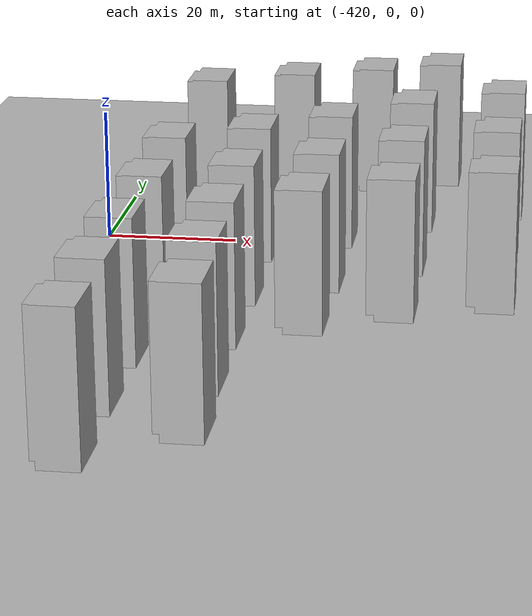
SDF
<sdf version="1.7">
 <world name="default">
  <model name="ground_plane">
   <static>1</static>
   <link name="link">
    <collision name="collision">
     <geometry><mesh><uri>model://ground_plane/scripts/plane.dae</uri><normal>0 0 1</normal></mesh></geometry>
     <surface><friction><ode><mu>100</mu><mu2>50</mu2></ode></friction></surface>
    </collision>
    <visual name="visual">
     <geometry><mesh><uri>model://ground_plane/scripts/plane.dae</uri><normal>0 0 1</normal></mesh></geometry>
     <material>
      <lighting>1</lighting>
      <script><uri>model://ground_plane/scripts/plane.jpg</uri><name>__default__</name></script>
      <shader type="pixel"/>
     </material>
    </visual>
   </link>
  </model>
  <model name="apartment1_0_clone_2">
   <static>1</static>
   <link name="link_0">
    <inertial>
     <mass>1</mass>
     <inertia>
      <ixx>0.166667</ixx>
      <ixy>0</ixy>
      <ixz>0</ixz>
      <iyy>0.166667</iyy>
      <iyz>0</iyz>
      <izz>0.166667</izz>
     </inertia>
    </inertial>
    <pose>1e-06 -0 0 0 -0 0</pose>
    <visual name="visual">
     <geometry>
      <mesh><uri>model://apartment1/scripts/apartment1.dae</uri><scale>0.14 0.14 0.175</scale></mesh>
     </geometry>
     <material>
      <lighting>1</lighting>
      <script><uri>model://apartment1/scripts/apartment1.jpg</uri><name>__default__</name></script>
      <shader type="pixel"/>
     </material>
    </visual>
    <collision name="collision">
     <geometry>
      <mesh><uri>model://apartment1/scripts/apartment1.dae</uri><scale>0.14 0.14 0.175</scale></mesh>
     </geometry>
     <surface>
      <friction>
       <ode><mu>1</mu><mu2>1</mu2><fdir1>0 0 0</fdir1><slip1>0</slip1><slip2>0</slip2></ode>
       <torsional>
        <coefficient>1</coefficient>
        <patch_radius>0</patch_radius>
        <surface_radius>0</surface_radius>
        <use_patch_radius>1</use_patch_radius>
        <ode><slip>0</slip></ode>
       </torsional>
      </friction>
      <bounce><restitution_coefficient>0</restitution_coefficient><threshold>1e+06</threshold></bounce>
      <contact>
       <collide_without_contact>0</collide_without_contact>
       <collide_without_contact_bitmask>1</collide_without_contact_bitmask>
       <collide_bitmask>1</collide_bitmask>
       <ode>
        <soft_cfm>0</soft_cfm>
        <soft_erp>0.2</soft_erp>
        <kp>1e+13</kp>
        <kd>1</kd>
        <max_vel>0.01</max_vel>
        <min_depth>0</min_depth>
       </ode>
       <bullet>
        <split_impulse>1</split_impulse>
        <split_impulse_penetration_threshold>-0.01</split_impulse_penetration_threshold>
        <soft_cfm>0</soft_cfm>
        <soft_erp>0.2</soft_erp>
        <kp>1e+13</kp>
        <kd>1</kd>
       </bullet>
      </contact>
     </surface>
    </collision>
   </link>
   <static>0</static>
   <pose>-406.714 21.8922 0 0 -0 0</pose>
  </model>
  <model name="apartment1_0_clone_3">
   <static>1</static>
   <link name="link_0">
    <inertial>
     <mass>1</mass>
     <inertia>
      <ixx>0.166667</ixx>
      <ixy>0</ixy>
      <ixz>0</ixz>
      <iyy>0.166667</iyy>
      <iyz>0</iyz>
      <izz>0.166667</izz>
     </inertia>
    </inertial>
    <pose>1e-06 -0 0 0 -0 0</pose>
    <visual name="visual">
     <geometry>
      <mesh><uri>model://apartment1/scripts/apartment1.dae</uri><scale>0.14 0.14 0.175</scale></mesh>
     </geometry>
     <material>
      <lighting>1</lighting>
      <script><uri>model://apartment1/scripts/apartment1.jpg</uri><name>__default__</name></script>
      <shader type="pixel"/>
     </material>
    </visual>
    <collision name="collision">
     <geometry>
      <mesh><uri>model://apartment1/scripts/apartment1.dae</uri><scale>0.14 0.14 0.175</scale></mesh>
     </geometry>
     <surface>
      <friction>
       <ode><mu>1</mu><mu2>1</mu2><fdir1>0 0 0</fdir1><slip1>0</slip1><slip2>0</slip2></ode>
       <torsional>
        <coefficient>1</coefficient>
        <patch_radius>0</patch_radius>
        <surface_radius>0</surface_radius>
        <use_patch_radius>1</use_patch_radius>
        <ode><slip>0</slip></ode>
       </torsional>
      </friction>
      <bounce><restitution_coefficient>0</restitution_coefficient><threshold>1e+06</threshold></bounce>
      <contact>
       <collide_without_contact>0</collide_without_contact>
       <collide_without_contact_bitmask>1</collide_without_contact_bitmask>
       <collide_bitmask>1</collide_bitmask>
       <ode>
        <soft_cfm>0</soft_cfm>
        <soft_erp>0.2</soft_erp>
        <kp>1e+13</kp>
        <kd>1</kd>
        <max_vel>0.01</max_vel>
        <min_depth>0</min_depth>
       </ode>
       <bullet>
        <split_impulse>1</split_impulse>
        <split_impulse_penetration_threshold>-0.01</split_impulse_penetration_threshold>
        <soft_cfm>0</soft_cfm>
        <soft_erp>0.2</soft_erp>
        <kp>1e+13</kp>
        <kd>1</kd>
       </bullet>
      </contact>
     </surface>
    </collision>
   </link>
   <static>0</static>
   <pose>-407.424 -11.464 0 0 -0 0</pose>
  </model>
  <model name="apartment1_0_clone_4">
   <static>1</static>
   <link name="link_0">
    <inertial>
     <mass>1</mass>
     <inertia>
      <ixx>0.166667</ixx>
      <ixy>0</ixy>
      <ixz>0</ixz>
      <iyy>0.166667</iyy>
      <iyz>0</iyz>
      <izz>0.166667</izz>
     </inertia>
    </inertial>
    <pose>1e-06 -0 0 0 -0 0</pose>
    <visual name="visual">
     <geometry>
      <mesh><uri>model://apartment1/scripts/apartment1.dae</uri><scale>0.14 0.14 0.175</scale></mesh>
     </geometry>
     <material>
      <lighting>1</lighting>
      <script><uri>model://apartment1/scripts/apartment1.jpg</uri><name>__default__</name></script>
      <shader type="pixel"/>
     </material>
    </visual>
    <collision name="collision">
     <geometry>
      <mesh><uri>model://apartment1/scripts/apartment1.dae</uri><scale>0.14 0.14 0.175</scale></mesh>
     </geometry>
     <surface>
      <friction>
       <ode><mu>1</mu><mu2>1</mu2><fdir1>0 0 0</fdir1><slip1>0</slip1><slip2>0</slip2></ode>
       <torsional>
        <coefficient>1</coefficient>
        <patch_radius>0</patch_radius>
        <surface_radius>0</surface_radius>
        <use_patch_radius>1</use_patch_radius>
        <ode><slip>0</slip></ode>
       </torsional>
      </friction>
      <bounce><restitution_coefficient>0</restitution_coefficient><threshold>1e+06</threshold></bounce>
      <contact>
       <collide_without_contact>0</collide_without_contact>
       <collide_without_contact_bitmask>1</collide_without_contact_bitmask>
       <collide_bitmask>1</collide_bitmask>
       <ode>
        <soft_cfm>0</soft_cfm>
        <soft_erp>0.2</soft_erp>
        <kp>1e+13</kp>
        <kd>1</kd>
        <max_vel>0.01</max_vel>
        <min_depth>0</min_depth>
       </ode>
       <bullet>
        <split_impulse>1</split_impulse>
        <split_impulse_penetration_threshold>-0.01</split_impulse_penetration_threshold>
        <soft_cfm>0</soft_cfm>
        <soft_erp>0.2</soft_erp>
        <kp>1e+13</kp>
        <kd>1</kd>
       </bullet>
      </contact>
     </surface>
    </collision>
   </link>
   <static>0</static>
   <pose>-395.709 -5.1567 0 0 -0 0</pose>
  </model>
  <model name="apartment1_0_clone_5">
   <static>1</static>
   <link name="link_0">
    <inertial>
     <mass>1</mass>
     <inertia>
      <ixx>0.166667</ixx>
      <ixy>0</ixy>
      <ixz>0</ixz>
      <iyy>0.166667</iyy>
      <iyz>0</iyz>
      <izz>0.166667</izz>
     </inertia>
    </inertial>
    <pose>1e-06 -0 0 0 -0 0</pose>
    <visual name="visual">
     <geometry>
      <mesh><uri>model://apartment1/scripts/apartment1.dae</uri><scale>0.14 0.14 0.175</scale></mesh>
     </geometry>
     <material>
      <lighting>1</lighting>
      <script><uri>model://apartment1/scripts/apartment1.jpg</uri><name>__default__</name></script>
      <shader type="pixel"/>
     </material>
    </visual>
    <collision name="collision">
     <geometry>
      <mesh><uri>model://apartment1/scripts/apartment1.dae</uri><scale>0.14 0.14 0.175</scale></mesh>
     </geometry>
     <surface>
      <friction>
       <ode><mu>1</mu><mu2>1</mu2><fdir1>0 0 0</fdir1><slip1>0</slip1><slip2>0</slip2></ode>
       <torsional>
        <coefficient>1</coefficient>
        <patch_radius>0</patch_radius>
        <surface_radius>0</surface_radius>
        <use_patch_radius>1</use_patch_radius>
        <ode><slip>0</slip></ode>
       </torsional>
      </friction>
      <bounce><restitution_coefficient>0</restitution_coefficient><threshold>1e+06</threshold></bounce>
      <contact>
       <collide_without_contact>0</collide_without_contact>
       <collide_without_contact_bitmask>1</collide_without_contact_bitmask>
       <collide_bitmask>1</collide_bitmask>
       <ode>
        <soft_cfm>0</soft_cfm>
        <soft_erp>0.2</soft_erp>
        <kp>1e+13</kp>
        <kd>1</kd>
        <max_vel>0.01</max_vel>
        <min_depth>0</min_depth>
       </ode>
       <bullet>
        <split_impulse>1</split_impulse>
        <split_impulse_penetration_threshold>-0.01</split_impulse_penetration_threshold>
        <soft_cfm>0</soft_cfm>
        <soft_erp>0.2</soft_erp>
        <kp>1e+13</kp>
        <kd>1</kd>
       </bullet>
      </contact>
     </surface>
    </collision>
   </link>
   <static>0</static>
   <pose>-384.289 2.77257 0 0 -0 0</pose>
  </model>
  <model name="apartment1_0_clone_6">
   <static>1</static>
   <link name="link_0">
    <inertial>
     <mass>1</mass>
     <inertia>
      <ixx>0.166667</ixx>
      <ixy>0</ixy>
      <ixz>0</ixz>
      <iyy>0.166667</iyy>
      <iyz>0</iyz>
      <izz>0.166667</izz>
     </inertia>
    </inertial>
    <pose>1e-06 -0 0 0 -0 0</pose>
    <visual name="visual">
     <geometry>
      <mesh><uri>model://apartment1/scripts/apartment1.dae</uri><scale>0.14 0.14 0.175</scale></mesh>
     </geometry>
     <material>
      <lighting>1</lighting>
      <script><uri>model://apartment1/scripts/apartment1.jpg</uri><name>__default__</name></script>
      <shader type="pixel"/>
     </material>
    </visual>
    <collision name="collision">
     <geometry>
      <mesh><uri>model://apartment1/scripts/apartment1.dae</uri><scale>0.14 0.14 0.175</scale></mesh>
     </geometry>
     <surface>
      <friction>
       <ode><mu>1</mu><mu2>1</mu2><fdir1>0 0 0</fdir1><slip1>0</slip1><slip2>0</slip2></ode>
       <torsional>
        <coefficient>1</coefficient>
        <patch_radius>0</patch_radius>
        <surface_radius>0</surface_radius>
        <use_patch_radius>1</use_patch_radius>
        <ode><slip>0</slip></ode>
       </torsional>
      </friction>
      <bounce><restitution_coefficient>0</restitution_coefficient><threshold>1e+06</threshold></bounce>
      <contact>
       <collide_without_contact>0</collide_without_contact>
       <collide_without_contact_bitmask>1</collide_without_contact_bitmask>
       <collide_bitmask>1</collide_bitmask>
       <ode>
        <soft_cfm>0</soft_cfm>
        <soft_erp>0.2</soft_erp>
        <kp>1e+13</kp>
        <kd>1</kd>
        <max_vel>0.01</max_vel>
        <min_depth>0</min_depth>
       </ode>
       <bullet>
        <split_impulse>1</split_impulse>
        <split_impulse_penetration_threshold>-0.01</split_impulse_penetration_threshold>
        <soft_cfm>0</soft_cfm>
        <soft_erp>0.2</soft_erp>
        <kp>1e+13</kp>
        <kd>1</kd>
       </bullet>
      </contact>
     </surface>
    </collision>
   </link>
   <static>0</static>
   <pose>-372.548 12.0518 0 0 -0 0</pose>
  </model>
  <model name="apartment1_0_clone_7">
   <static>1</static>
   <link name="link_0">
    <inertial>
     <mass>1</mass>
     <inertia>
      <ixx>0.166667</ixx>
      <ixy>0</ixy>
      <ixz>0</ixz>
      <iyy>0.166667</iyy>
      <iyz>0</iyz>
      <izz>0.166667</izz>
     </inertia>
    </inertial>
    <pose>1e-06 -0 0 0 -0 0</pose>
    <visual name="visual">
     <geometry>
      <mesh><uri>model://apartment1/scripts/apartment1.dae</uri><scale>0.14 0.14 0.175</scale></mesh>
     </geometry>
     <material>
      <lighting>1</lighting>
      <script><uri>model://apartment1/scripts/apartment1.jpg</uri><name>__default__</name></script>
      <shader type="pixel"/>
     </material>
    </visual>
    <collision name="collision">
     <geometry>
      <mesh><uri>model://apartment1/scripts/apartment1.dae</uri><scale>0.14 0.14 0.175</scale></mesh>
     </geometry>
     <surface>
      <friction>
       <ode><mu>1</mu><mu2>1</mu2><fdir1>0 0 0</fdir1><slip1>0</slip1><slip2>0</slip2></ode>
       <torsional>
        <coefficient>1</coefficient>
        <patch_radius>0</patch_radius>
        <surface_radius>0</surface_radius>
        <use_patch_radius>1</use_patch_radius>
        <ode><slip>0</slip></ode>
       </torsional>
      </friction>
      <bounce><restitution_coefficient>0</restitution_coefficient><threshold>1e+06</threshold></bounce>
      <contact>
       <collide_without_contact>0</collide_without_contact>
       <collide_without_contact_bitmask>1</collide_without_contact_bitmask>
       <collide_bitmask>1</collide_bitmask>
       <ode>
        <soft_cfm>0</soft_cfm>
        <soft_erp>0.2</soft_erp>
        <kp>1e+13</kp>
        <kd>1</kd>
        <max_vel>0.01</max_vel>
        <min_depth>0</min_depth>
       </ode>
       <bullet>
        <split_impulse>1</split_impulse>
        <split_impulse_penetration_threshold>-0.01</split_impulse_penetration_threshold>
        <soft_cfm>0</soft_cfm>
        <soft_erp>0.2</soft_erp>
        <kp>1e+13</kp>
        <kd>1</kd>
       </bullet>
      </contact>
     </surface>
    </collision>
   </link>
   <static>0</static>
   <pose>-358.658 19.9237 0 0 -0 0</pose>
  </model>
  <model name="apartment1_0_clone_8">
   <static>1</static>
   <link name="link_0">
    <inertial>
     <mass>1</mass>
     <inertia>
      <ixx>0.166667</ixx>
      <ixy>0</ixy>
      <ixz>0</ixz>
      <iyy>0.166667</iyy>
      <iyz>0</iyz>
      <izz>0.166667</izz>
     </inertia>
    </inertial>
    <pose>1e-06 -0 0 0 -0 0</pose>
    <visual name="visual">
     <geometry>
      <mesh><uri>model://apartment1/scripts/apartment1.dae</uri><scale>0.14 0.14 0.175</scale></mesh>
     </geometry>
     <material>
      <lighting>1</lighting>
      <script><uri>model://apartment1/scripts/apartment1.jpg</uri><name>__default__</name></script>
      <shader type="pixel"/>
     </material>
    </visual>
    <collision name="collision">
     <geometry>
      <mesh><uri>model://apartment1/scripts/apartment1.dae</uri><scale>0.14 0.14 0.175</scale></mesh>
     </geometry>
     <surface>
      <friction>
       <ode><mu>1</mu><mu2>1</mu2><fdir1>0 0 0</fdir1><slip1>0</slip1><slip2>0</slip2></ode>
       <torsional>
        <coefficient>1</coefficient>
        <patch_radius>0</patch_radius>
        <surface_radius>0</surface_radius>
        <use_patch_radius>1</use_patch_radius>
        <ode><slip>0</slip></ode>
       </torsional>
      </friction>
      <bounce><restitution_coefficient>0</restitution_coefficient><threshold>1e+06</threshold></bounce>
      <contact>
       <collide_without_contact>0</collide_without_contact>
       <collide_without_contact_bitmask>1</collide_without_contact_bitmask>
       <collide_bitmask>1</collide_bitmask>
       <ode>
        <soft_cfm>0</soft_cfm>
        <soft_erp>0.2</soft_erp>
        <kp>1e+13</kp>
        <kd>1</kd>
        <max_vel>0.01</max_vel>
        <min_depth>0</min_depth>
       </ode>
       <bullet>
        <split_impulse>1</split_impulse>
        <split_impulse_penetration_threshold>-0.01</split_impulse_penetration_threshold>
        <soft_cfm>0</soft_cfm>
        <soft_erp>0.2</soft_erp>
        <kp>1e+13</kp>
        <kd>1</kd>
       </bullet>
      </contact>
     </surface>
    </collision>
   </link>
   <static>0</static>
   <pose>-407.23 -30.696 0 0 -0 0</pose>
  </model>
  <model name="apartment1_0_clone_9">
   <static>1</static>
   <link name="link_0">
    <inertial>
     <mass>1</mass>
     <inertia>
      <ixx>0.166667</ixx>
      <ixy>0</ixy>
      <ixz>0</ixz>
      <iyy>0.166667</iyy>
      <iyz>0</iyz>
      <izz>0.166667</izz>
     </inertia>
    </inertial>
    <pose>1e-06 -0 0 0 -0 0</pose>
    <visual name="visual">
     <geometry>
      <mesh><uri>model://apartment1/scripts/apartment1.dae</uri><scale>0.14 0.14 0.175</scale></mesh>
     </geometry>
     <material>
      <lighting>1</lighting>
      <script><uri>model://apartment1/scripts/apartment1.jpg</uri><name>__default__</name></script>
      <shader type="pixel"/>
     </material>
    </visual>
    <collision name="collision">
     <geometry>
      <mesh><uri>model://apartment1/scripts/apartment1.dae</uri><scale>0.14 0.14 0.175</scale></mesh>
     </geometry>
     <surface>
      <friction>
       <ode><mu>1</mu><mu2>1</mu2><fdir1>0 0 0</fdir1><slip1>0</slip1><slip2>0</slip2></ode>
       <torsional>
        <coefficient>1</coefficient>
        <patch_radius>0</patch_radius>
        <surface_radius>0</surface_radius>
        <use_patch_radius>1</use_patch_radius>
        <ode><slip>0</slip></ode>
       </torsional>
      </friction>
      <bounce><restitution_coefficient>0</restitution_coefficient><threshold>1e+06</threshold></bounce>
      <contact>
       <collide_without_contact>0</collide_without_contact>
       <collide_without_contact_bitmask>1</collide_without_contact_bitmask>
       <collide_bitmask>1</collide_bitmask>
       <ode>
        <soft_cfm>0</soft_cfm>
        <soft_erp>0.2</soft_erp>
        <kp>1e+13</kp>
        <kd>1</kd>
        <max_vel>0.01</max_vel>
        <min_depth>0</min_depth>
       </ode>
       <bullet>
        <split_impulse>1</split_impulse>
        <split_impulse_penetration_threshold>-0.01</split_impulse_penetration_threshold>
        <soft_cfm>0</soft_cfm>
        <soft_erp>0.2</soft_erp>
        <kp>1e+13</kp>
        <kd>1</kd>
       </bullet>
      </contact>
     </surface>
    </collision>
   </link>
   <static>0</static>
   <pose>-407.538 -49.0824 0 0 -0 0</pose>
  </model>
  <model name="apartment1_0_clone_10">
   <static>1</static>
   <link name="link_0">
    <inertial>
     <mass>1</mass>
     <inertia>
      <ixx>0.166667</ixx>
      <ixy>0</ixy>
      <ixz>0</ixz>
      <iyy>0.166667</iyy>
      <iyz>0</iyz>
      <izz>0.166667</izz>
     </inertia>
    </inertial>
    <pose>1e-06 -0 0 0 -0 0</pose>
    <visual name="visual">
     <geometry>
      <mesh><uri>model://apartment1/scripts/apartment1.dae</uri><scale>0.14 0.14 0.175</scale></mesh>
     </geometry>
     <material>
      <lighting>1</lighting>
      <script><uri>model://apartment1/scripts/apartment1.jpg</uri><name>__default__</name></script>
      <shader type="pixel"/>
     </material>
    </visual>
    <collision name="collision">
     <geometry>
      <mesh><uri>model://apartment1/scripts/apartment1.dae</uri><scale>0.14 0.14 0.175</scale></mesh>
     </geometry>
     <surface>
      <friction>
       <ode><mu>1</mu><mu2>1</mu2><fdir1>0 0 0</fdir1><slip1>0</slip1><slip2>0</slip2></ode>
       <torsional>
        <coefficient>1</coefficient>
        <patch_radius>0</patch_radius>
        <surface_radius>0</surface_radius>
        <use_patch_radius>1</use_patch_radius>
        <ode><slip>0</slip></ode>
       </torsional>
      </friction>
      <bounce><restitution_coefficient>0</restitution_coefficient><threshold>1e+06</threshold></bounce>
      <contact>
       <collide_without_contact>0</collide_without_contact>
       <collide_without_contact_bitmask>1</collide_without_contact_bitmask>
       <collide_bitmask>1</collide_bitmask>
       <ode>
        <soft_cfm>0</soft_cfm>
        <soft_erp>0.2</soft_erp>
        <kp>1e+13</kp>
        <kd>1</kd>
        <max_vel>0.01</max_vel>
        <min_depth>0</min_depth>
       </ode>
       <bullet>
        <split_impulse>1</split_impulse>
        <split_impulse_penetration_threshold>-0.01</split_impulse_penetration_threshold>
        <soft_cfm>0</soft_cfm>
        <soft_erp>0.2</soft_erp>
        <kp>1e+13</kp>
        <kd>1</kd>
       </bullet>
      </contact>
     </surface>
    </collision>
   </link>
   <static>0</static>
   <pose>-407.56 -65.1741 0 0 -0 0</pose>
  </model>
  <model name="apartment1_0_clone_11">
   <static>1</static>
   <link name="link_0">
    <inertial>
     <mass>1</mass>
     <inertia>
      <ixx>0.166667</ixx>
      <ixy>0</ixy>
      <ixz>0</ixz>
      <iyy>0.166667</iyy>
      <iyz>0</iyz>
      <izz>0.166667</izz>
     </inertia>
    </inertial>
    <pose>1e-06 -0 0 0 -0 0</pose>
    <visual name="visual">
     <geometry>
      <mesh><uri>model://apartment1/scripts/apartment1.dae</uri><scale>0.14 0.14 0.175</scale></mesh>
     </geometry>
     <material>
      <lighting>1</lighting>
      <script><uri>model://apartment1/scripts/apartment1.jpg</uri><name>__default__</name></script>
      <shader type="pixel"/>
     </material>
    </visual>
    <collision name="collision">
     <geometry>
      <mesh><uri>model://apartment1/scripts/apartment1.dae</uri><scale>0.14 0.14 0.175</scale></mesh>
     </geometry>
     <surface>
      <friction>
       <ode><mu>1</mu><mu2>1</mu2><fdir1>0 0 0</fdir1><slip1>0</slip1><slip2>0</slip2></ode>
       <torsional>
        <coefficient>1</coefficient>
        <patch_radius>0</patch_radius>
        <surface_radius>0</surface_radius>
        <use_patch_radius>1</use_patch_radius>
        <ode><slip>0</slip></ode>
       </torsional>
      </friction>
      <bounce><restitution_coefficient>0</restitution_coefficient><threshold>1e+06</threshold></bounce>
      <contact>
       <collide_without_contact>0</collide_without_contact>
       <collide_without_contact_bitmask>1</collide_without_contact_bitmask>
       <collide_bitmask>1</collide_bitmask>
       <ode>
        <soft_cfm>0</soft_cfm>
        <soft_erp>0.2</soft_erp>
        <kp>1e+13</kp>
        <kd>1</kd>
        <max_vel>0.01</max_vel>
        <min_depth>0</min_depth>
       </ode>
       <bullet>
        <split_impulse>1</split_impulse>
        <split_impulse_penetration_threshold>-0.01</split_impulse_penetration_threshold>
        <soft_cfm>0</soft_cfm>
        <soft_erp>0.2</soft_erp>
        <kp>1e+13</kp>
        <kd>1</kd>
       </bullet>
      </contact>
     </surface>
    </collision>
   </link>
   <static>0</static>
   <pose>-407.346 -81.6289 0 0 -0 0</pose>
  </model>
  <model name="apartment1_0_clone_4_clone">
   <static>1</static>
   <link name="link_0">
    <inertial>
     <mass>1</mass>
     <inertia>
      <ixx>0.166667</ixx>
      <ixy>0</ixy>
      <ixz>0</ixz>
      <iyy>0.166667</iyy>
      <iyz>0</iyz>
      <izz>0.166667</izz>
     </inertia>
    </inertial>
    <pose>1e-06 -0 0 0 -0 0</pose>
    <visual name="visual">
     <geometry>
      <mesh><uri>model://apartment1/scripts/apartment1.dae</uri><scale>0.14 0.14 0.175</scale></mesh>
     </geometry>
     <material>
      <lighting>1</lighting>
      <script><uri>model://apartment1/scripts/apartment1.jpg</uri><name>__default__</name></script>
      <shader type="pixel"/>
     </material>
    </visual>
    <collision name="collision">
     <geometry>
      <mesh><uri>model://apartment1/scripts/apartment1.dae</uri><scale>0.14 0.14 0.175</scale></mesh>
     </geometry>
     <surface>
      <friction>
       <ode><mu>1</mu><mu2>1</mu2><fdir1>0 0 0</fdir1><slip1>0</slip1><slip2>0</slip2></ode>
       <torsional>
        <coefficient>1</coefficient>
        <patch_radius>0</patch_radius>
        <surface_radius>0</surface_radius>
        <use_patch_radius>1</use_patch_radius>
        <ode><slip>0</slip></ode>
       </torsional>
      </friction>
      <bounce><restitution_coefficient>0</restitution_coefficient><threshold>1e+06</threshold></bounce>
      <contact>
       <collide_without_contact>0</collide_without_contact>
       <collide_without_contact_bitmask>1</collide_without_contact_bitmask>
       <collide_bitmask>1</collide_bitmask>
       <ode>
        <soft_cfm>0</soft_cfm>
        <soft_erp>0.2</soft_erp>
        <kp>1e+13</kp>
        <kd>1</kd>
        <max_vel>0.01</max_vel>
        <min_depth>0</min_depth>
       </ode>
       <bullet>
        <split_impulse>1</split_impulse>
        <split_impulse_penetration_threshold>-0.01</split_impulse_penetration_threshold>
        <soft_cfm>0</soft_cfm>
        <soft_erp>0.2</soft_erp>
        <kp>1e+13</kp>
        <kd>1</kd>
       </bullet>
      </contact>
     </surface>
    </collision>
   </link>
   <static>0</static>
   <pose>-395.309 -24.1462 0 0 -0 0</pose>
  </model>
  <model name="apartment1_0_clone_4_clone_0">
   <static>1</static>
   <link name="link_0">
    <inertial>
     <mass>1</mass>
     <inertia>
      <ixx>0.166667</ixx>
      <ixy>0</ixy>
      <ixz>0</ixz>
      <iyy>0.166667</iyy>
      <iyz>0</iyz>
      <izz>0.166667</izz>
     </inertia>
    </inertial>
    <pose>1e-06 -0 0 0 -0 0</pose>
    <visual name="visual">
     <geometry>
      <mesh><uri>model://apartment1/scripts/apartment1.dae</uri><scale>0.14 0.14 0.175</scale></mesh>
     </geometry>
     <material>
      <lighting>1</lighting>
      <script><uri>model://apartment1/scripts/apartment1.jpg</uri><name>__default__</name></script>
      <shader type="pixel"/>
     </material>
    </visual>
    <collision name="collision">
     <geometry>
      <mesh><uri>model://apartment1/scripts/apartment1.dae</uri><scale>0.14 0.14 0.175</scale></mesh>
     </geometry>
     <surface>
      <friction>
       <ode><mu>1</mu><mu2>1</mu2><fdir1>0 0 0</fdir1><slip1>0</slip1><slip2>0</slip2></ode>
       <torsional>
        <coefficient>1</coefficient>
        <patch_radius>0</patch_radius>
        <surface_radius>0</surface_radius>
        <use_patch_radius>1</use_patch_radius>
        <ode><slip>0</slip></ode>
       </torsional>
      </friction>
      <bounce><restitution_coefficient>0</restitution_coefficient><threshold>1e+06</threshold></bounce>
      <contact>
       <collide_without_contact>0</collide_without_contact>
       <collide_without_contact_bitmask>1</collide_without_contact_bitmask>
       <collide_bitmask>1</collide_bitmask>
       <ode>
        <soft_cfm>0</soft_cfm>
        <soft_erp>0.2</soft_erp>
        <kp>1e+13</kp>
        <kd>1</kd>
        <max_vel>0.01</max_vel>
        <min_depth>0</min_depth>
       </ode>
       <bullet>
        <split_impulse>1</split_impulse>
        <split_impulse_penetration_threshold>-0.01</split_impulse_penetration_threshold>
        <soft_cfm>0</soft_cfm>
        <soft_erp>0.2</soft_erp>
        <kp>1e+13</kp>
        <kd>1</kd>
       </bullet>
      </contact>
     </surface>
    </collision>
   </link>
   <static>0</static>
   <pose>-384.006 -17.2145 0 0 -0 0</pose>
  </model>
  <model name="apartment1_0_clone_4_clone_1">
   <static>1</static>
   <link name="link_0">
    <inertial>
     <mass>1</mass>
     <inertia>
      <ixx>0.166667</ixx>
      <ixy>0</ixy>
      <ixz>0</ixz>
      <iyy>0.166667</iyy>
      <iyz>0</iyz>
      <izz>0.166667</izz>
     </inertia>
    </inertial>
    <pose>1e-06 -0 0 0 -0 0</pose>
    <visual name="visual">
     <geometry>
      <mesh><uri>model://apartment1/scripts/apartment1.dae</uri><scale>0.14 0.14 0.175</scale></mesh>
     </geometry>
     <material>
      <lighting>1</lighting>
      <script><uri>model://apartment1/scripts/apartment1.jpg</uri><name>__default__</name></script>
      <shader type="pixel"/>
     </material>
    </visual>
    <collision name="collision">
     <geometry>
      <mesh><uri>model://apartment1/scripts/apartment1.dae</uri><scale>0.14 0.14 0.175</scale></mesh>
     </geometry>
     <surface>
      <friction>
       <ode><mu>1</mu><mu2>1</mu2><fdir1>0 0 0</fdir1><slip1>0</slip1><slip2>0</slip2></ode>
       <torsional>
        <coefficient>1</coefficient>
        <patch_radius>0</patch_radius>
        <surface_radius>0</surface_radius>
        <use_patch_radius>1</use_patch_radius>
        <ode><slip>0</slip></ode>
       </torsional>
      </friction>
      <bounce><restitution_coefficient>0</restitution_coefficient><threshold>1e+06</threshold></bounce>
      <contact>
       <collide_without_contact>0</collide_without_contact>
       <collide_without_contact_bitmask>1</collide_without_contact_bitmask>
       <collide_bitmask>1</collide_bitmask>
       <ode>
        <soft_cfm>0</soft_cfm>
        <soft_erp>0.2</soft_erp>
        <kp>1e+13</kp>
        <kd>1</kd>
        <max_vel>0.01</max_vel>
        <min_depth>0</min_depth>
       </ode>
       <bullet>
        <split_impulse>1</split_impulse>
        <split_impulse_penetration_threshold>-0.01</split_impulse_penetration_threshold>
        <soft_cfm>0</soft_cfm>
        <soft_erp>0.2</soft_erp>
        <kp>1e+13</kp>
        <kd>1</kd>
       </bullet>
      </contact>
     </surface>
    </collision>
   </link>
   <static>0</static>
   <pose>-372.442 -8.73774 0 0 -0 0</pose>
  </model>
  <model name="apartment1_0_clone_4_clone_2">
   <static>1</static>
   <link name="link_0">
    <inertial>
     <mass>1</mass>
     <inertia>
      <ixx>0.166667</ixx>
      <ixy>0</ixy>
      <ixz>0</ixz>
      <iyy>0.166667</iyy>
      <iyz>0</iyz>
      <izz>0.166667</izz>
     </inertia>
    </inertial>
    <pose>1e-06 -0 0 0 -0 0</pose>
    <visual name="visual">
     <geometry>
      <mesh><uri>model://apartment1/scripts/apartment1.dae</uri><scale>0.14 0.14 0.175</scale></mesh>
     </geometry>
     <material>
      <lighting>1</lighting>
      <script><uri>model://apartment1/scripts/apartment1.jpg</uri><name>__default__</name></script>
      <shader type="pixel"/>
     </material>
    </visual>
    <collision name="collision">
     <geometry>
      <mesh><uri>model://apartment1/scripts/apartment1.dae</uri><scale>0.14 0.14 0.175</scale></mesh>
     </geometry>
     <surface>
      <friction>
       <ode><mu>1</mu><mu2>1</mu2><fdir1>0 0 0</fdir1><slip1>0</slip1><slip2>0</slip2></ode>
       <torsional>
        <coefficient>1</coefficient>
        <patch_radius>0</patch_radius>
        <surface_radius>0</surface_radius>
        <use_patch_radius>1</use_patch_radius>
        <ode><slip>0</slip></ode>
       </torsional>
      </friction>
      <bounce><restitution_coefficient>0</restitution_coefficient><threshold>1e+06</threshold></bounce>
      <contact>
       <collide_without_contact>0</collide_without_contact>
       <collide_without_contact_bitmask>1</collide_without_contact_bitmask>
       <collide_bitmask>1</collide_bitmask>
       <ode>
        <soft_cfm>0</soft_cfm>
        <soft_erp>0.2</soft_erp>
        <kp>1e+13</kp>
        <kd>1</kd>
        <max_vel>0.01</max_vel>
        <min_depth>0</min_depth>
       </ode>
       <bullet>
        <split_impulse>1</split_impulse>
        <split_impulse_penetration_threshold>-0.01</split_impulse_penetration_threshold>
        <soft_cfm>0</soft_cfm>
        <soft_erp>0.2</soft_erp>
        <kp>1e+13</kp>
        <kd>1</kd>
       </bullet>
      </contact>
     </surface>
    </collision>
   </link>
   <static>0</static>
   <pose>-358.708 -2.52428 0 0 -0 0</pose>
  </model>
  <model name="apartment1_0_clone_4_clone_3">
   <static>1</static>
   <link name="link_0">
    <inertial>
     <mass>1</mass>
     <inertia>
      <ixx>0.166667</ixx>
      <ixy>0</ixy>
      <ixz>0</ixz>
      <iyy>0.166667</iyy>
      <iyz>0</iyz>
      <izz>0.166667</izz>
     </inertia>
    </inertial>
    <pose>1e-06 -0 0 0 -0 0</pose>
    <visual name="visual">
     <geometry>
      <mesh><uri>model://apartment1/scripts/apartment1.dae</uri><scale>0.14 0.14 0.175</scale></mesh>
     </geometry>
     <material>
      <lighting>1</lighting>
      <script><uri>model://apartment1/scripts/apartment1.jpg</uri><name>__default__</name></script>
      <shader type="pixel"/>
     </material>
    </visual>
    <collision name="collision">
     <geometry>
      <mesh><uri>model://apartment1/scripts/apartment1.dae</uri><scale>0.14 0.14 0.175</scale></mesh>
     </geometry>
     <surface>
      <friction>
       <ode><mu>1</mu><mu2>1</mu2><fdir1>0 0 0</fdir1><slip1>0</slip1><slip2>0</slip2></ode>
       <torsional>
        <coefficient>1</coefficient>
        <patch_radius>0</patch_radius>
        <surface_radius>0</surface_radius>
        <use_patch_radius>1</use_patch_radius>
        <ode><slip>0</slip></ode>
       </torsional>
      </friction>
      <bounce><restitution_coefficient>0</restitution_coefficient><threshold>1e+06</threshold></bounce>
      <contact>
       <collide_without_contact>0</collide_without_contact>
       <collide_without_contact_bitmask>1</collide_without_contact_bitmask>
       <collide_bitmask>1</collide_bitmask>
       <ode>
        <soft_cfm>0</soft_cfm>
        <soft_erp>0.2</soft_erp>
        <kp>1e+13</kp>
        <kd>1</kd>
        <max_vel>0.01</max_vel>
        <min_depth>0</min_depth>
       </ode>
       <bullet>
        <split_impulse>1</split_impulse>
        <split_impulse_penetration_threshold>-0.01</split_impulse_penetration_threshold>
        <soft_cfm>0</soft_cfm>
        <soft_erp>0.2</soft_erp>
        <kp>1e+13</kp>
        <kd>1</kd>
       </bullet>
      </contact>
     </surface>
    </collision>
   </link>
   <static>0</static>
   <pose>-395.426 -40.9327 0 0 -0 0</pose>
  </model>
  <model name="apartment1_0_clone_4_clone_4">
   <static>1</static>
   <link name="link_0">
    <inertial>
     <mass>1</mass>
     <inertia>
      <ixx>0.166667</ixx>
      <ixy>0</ixy>
      <ixz>0</ixz>
      <iyy>0.166667</iyy>
      <iyz>0</iyz>
      <izz>0.166667</izz>
     </inertia>
    </inertial>
    <pose>1e-06 -0 0 0 -0 0</pose>
    <visual name="visual">
     <geometry>
      <mesh><uri>model://apartment1/scripts/apartment1.dae</uri><scale>0.14 0.14 0.175</scale></mesh>
     </geometry>
     <material>
      <lighting>1</lighting>
      <script><uri>model://apartment1/scripts/apartment1.jpg</uri><name>__default__</name></script>
      <shader type="pixel"/>
     </material>
    </visual>
    <collision name="collision">
     <geometry>
      <mesh><uri>model://apartment1/scripts/apartment1.dae</uri><scale>0.14 0.14 0.175</scale></mesh>
     </geometry>
     <surface>
      <friction>
       <ode><mu>1</mu><mu2>1</mu2><fdir1>0 0 0</fdir1><slip1>0</slip1><slip2>0</slip2></ode>
       <torsional>
        <coefficient>1</coefficient>
        <patch_radius>0</patch_radius>
        <surface_radius>0</surface_radius>
        <use_patch_radius>1</use_patch_radius>
        <ode><slip>0</slip></ode>
       </torsional>
      </friction>
      <bounce><restitution_coefficient>0</restitution_coefficient><threshold>1e+06</threshold></bounce>
      <contact>
       <collide_without_contact>0</collide_without_contact>
       <collide_without_contact_bitmask>1</collide_without_contact_bitmask>
       <collide_bitmask>1</collide_bitmask>
       <ode>
        <soft_cfm>0</soft_cfm>
        <soft_erp>0.2</soft_erp>
        <kp>1e+13</kp>
        <kd>1</kd>
        <max_vel>0.01</max_vel>
        <min_depth>0</min_depth>
       </ode>
       <bullet>
        <split_impulse>1</split_impulse>
        <split_impulse_penetration_threshold>-0.01</split_impulse_penetration_threshold>
        <soft_cfm>0</soft_cfm>
        <soft_erp>0.2</soft_erp>
        <kp>1e+13</kp>
        <kd>1</kd>
       </bullet>
      </contact>
     </surface>
    </collision>
   </link>
   <static>0</static>
   <pose>-384.344 -34.5261 0 0 -0 0</pose>
  </model>
  <model name="apartment1_0_clone_4_clone_5">
   <static>1</static>
   <link name="link_0">
    <inertial>
     <mass>1</mass>
     <inertia>
      <ixx>0.166667</ixx>
      <ixy>0</ixy>
      <ixz>0</ixz>
      <iyy>0.166667</iyy>
      <iyz>0</iyz>
      <izz>0.166667</izz>
     </inertia>
    </inertial>
    <pose>1e-06 -0 0 0 -0 0</pose>
    <visual name="visual">
     <geometry>
      <mesh><uri>model://apartment1/scripts/apartment1.dae</uri><scale>0.14 0.14 0.175</scale></mesh>
     </geometry>
     <material>
      <lighting>1</lighting>
      <script><uri>model://apartment1/scripts/apartment1.jpg</uri><name>__default__</name></script>
      <shader type="pixel"/>
     </material>
    </visual>
    <collision name="collision">
     <geometry>
      <mesh><uri>model://apartment1/scripts/apartment1.dae</uri><scale>0.14 0.14 0.175</scale></mesh>
     </geometry>
     <surface>
      <friction>
       <ode><mu>1</mu><mu2>1</mu2><fdir1>0 0 0</fdir1><slip1>0</slip1><slip2>0</slip2></ode>
       <torsional>
        <coefficient>1</coefficient>
        <patch_radius>0</patch_radius>
        <surface_radius>0</surface_radius>
        <use_patch_radius>1</use_patch_radius>
        <ode><slip>0</slip></ode>
       </torsional>
      </friction>
      <bounce><restitution_coefficient>0</restitution_coefficient><threshold>1e+06</threshold></bounce>
      <contact>
       <collide_without_contact>0</collide_without_contact>
       <collide_without_contact_bitmask>1</collide_without_contact_bitmask>
       <collide_bitmask>1</collide_bitmask>
       <ode>
        <soft_cfm>0</soft_cfm>
        <soft_erp>0.2</soft_erp>
        <kp>1e+13</kp>
        <kd>1</kd>
        <max_vel>0.01</max_vel>
        <min_depth>0</min_depth>
       </ode>
       <bullet>
        <split_impulse>1</split_impulse>
        <split_impulse_penetration_threshold>-0.01</split_impulse_penetration_threshold>
        <soft_cfm>0</soft_cfm>
        <soft_erp>0.2</soft_erp>
        <kp>1e+13</kp>
        <kd>1</kd>
       </bullet>
      </contact>
     </surface>
    </collision>
   </link>
   <static>0</static>
   <pose>-372.231 -28.1151 0 0 -0 0</pose>
  </model>
  <model name="apartment1_0_clone_4_clone_6">
   <static>1</static>
   <link name="link_0">
    <inertial>
     <mass>1</mass>
     <inertia>
      <ixx>0.166667</ixx>
      <ixy>0</ixy>
      <ixz>0</ixz>
      <iyy>0.166667</iyy>
      <iyz>0</iyz>
      <izz>0.166667</izz>
     </inertia>
    </inertial>
    <pose>1e-06 -0 0 0 -0 0</pose>
    <visual name="visual">
     <geometry>
      <mesh><uri>model://apartment1/scripts/apartment1.dae</uri><scale>0.14 0.14 0.175</scale></mesh>
     </geometry>
     <material>
      <lighting>1</lighting>
      <script><uri>model://apartment1/scripts/apartment1.jpg</uri><name>__default__</name></script>
      <shader type="pixel"/>
     </material>
    </visual>
    <collision name="collision">
     <geometry>
      <mesh><uri>model://apartment1/scripts/apartment1.dae</uri><scale>0.14 0.14 0.175</scale></mesh>
     </geometry>
     <surface>
      <friction>
       <ode><mu>1</mu><mu2>1</mu2><fdir1>0 0 0</fdir1><slip1>0</slip1><slip2>0</slip2></ode>
       <torsional>
        <coefficient>1</coefficient>
        <patch_radius>0</patch_radius>
        <surface_radius>0</surface_radius>
        <use_patch_radius>1</use_patch_radius>
        <ode><slip>0</slip></ode>
       </torsional>
      </friction>
      <bounce><restitution_coefficient>0</restitution_coefficient><threshold>1e+06</threshold></bounce>
      <contact>
       <collide_without_contact>0</collide_without_contact>
       <collide_without_contact_bitmask>1</collide_without_contact_bitmask>
       <collide_bitmask>1</collide_bitmask>
       <ode>
        <soft_cfm>0</soft_cfm>
        <soft_erp>0.2</soft_erp>
        <kp>1e+13</kp>
        <kd>1</kd>
        <max_vel>0.01</max_vel>
        <min_depth>0</min_depth>
       </ode>
       <bullet>
        <split_impulse>1</split_impulse>
        <split_impulse_penetration_threshold>-0.01</split_impulse_penetration_threshold>
        <soft_cfm>0</soft_cfm>
        <soft_erp>0.2</soft_erp>
        <kp>1e+13</kp>
        <kd>1</kd>
       </bullet>
      </contact>
     </surface>
    </collision>
   </link>
   <static>0</static>
   <pose>-358.327 -23.0259 0 0 -0 0</pose>
  </model>
  <model name="apartment1_0_clone_11_clone">
   <static>1</static>
   <link name="link_0">
    <inertial>
     <mass>1</mass>
     <inertia>
      <ixx>0.166667</ixx>
      <ixy>0</ixy>
      <ixz>0</ixz>
      <iyy>0.166667</iyy>
      <iyz>0</iyz>
      <izz>0.166667</izz>
     </inertia>
    </inertial>
    <pose>1e-06 -0 0 0 -0 0</pose>
    <visual name="visual">
     <geometry>
      <mesh><uri>model://apartment1/scripts/apartment1.dae</uri><scale>0.14 0.14 0.175</scale></mesh>
     </geometry>
     <material>
      <lighting>1</lighting>
      <script><uri>model://apartment1/scripts/apartment1.jpg</uri><name>__default__</name></script>
      <shader type="pixel"/>
     </material>
    </visual>
    <collision name="collision">
     <geometry>
      <mesh><uri>model://apartment1/scripts/apartment1.dae</uri><scale>0.14 0.14 0.175</scale></mesh>
     </geometry>
     <surface>
      <friction>
       <ode><mu>1</mu><mu2>1</mu2><fdir1>0 0 0</fdir1><slip1>0</slip1><slip2>0</slip2></ode>
       <torsional>
        <coefficient>1</coefficient>
        <patch_radius>0</patch_radius>
        <surface_radius>0</surface_radius>
        <use_patch_radius>1</use_patch_radius>
        <ode><slip>0</slip></ode>
       </torsional>
      </friction>
      <bounce><restitution_coefficient>0</restitution_coefficient><threshold>1e+06</threshold></bounce>
      <contact>
       <collide_without_contact>0</collide_without_contact>
       <collide_without_contact_bitmask>1</collide_without_contact_bitmask>
       <collide_bitmask>1</collide_bitmask>
       <ode>
        <soft_cfm>0</soft_cfm>
        <soft_erp>0.2</soft_erp>
        <kp>1e+13</kp>
        <kd>1</kd>
        <max_vel>0.01</max_vel>
        <min_depth>0</min_depth>
       </ode>
       <bullet>
        <split_impulse>1</split_impulse>
        <split_impulse_penetration_threshold>-0.01</split_impulse_penetration_threshold>
        <soft_cfm>0</soft_cfm>
        <soft_erp>0.2</soft_erp>
        <kp>1e+13</kp>
        <kd>1</kd>
       </bullet>
      </contact>
     </surface>
    </collision>
   </link>
   <static>0</static>
   <pose>-395.099 -57.0265 0 0 -0 0</pose>
  </model>
  <model name="apartment1_0_clone_11_clone_0">
   <static>1</static>
   <link name="link_0">
    <inertial>
     <mass>1</mass>
     <inertia>
      <ixx>0.166667</ixx>
      <ixy>0</ixy>
      <ixz>0</ixz>
      <iyy>0.166667</iyy>
      <iyz>0</iyz>
      <izz>0.166667</izz>
     </inertia>
    </inertial>
    <pose>1e-06 -0 0 0 -0 0</pose>
    <visual name="visual">
     <geometry>
      <mesh><uri>model://apartment1/scripts/apartment1.dae</uri><scale>0.14 0.14 0.175</scale></mesh>
     </geometry>
     <material>
      <lighting>1</lighting>
      <script><uri>model://apartment1/scripts/apartment1.jpg</uri><name>__default__</name></script>
      <shader type="pixel"/>
     </material>
    </visual>
    <collision name="collision">
     <geometry>
      <mesh><uri>model://apartment1/scripts/apartment1.dae</uri><scale>0.14 0.14 0.175</scale></mesh>
     </geometry>
     <surface>
      <friction>
       <ode><mu>1</mu><mu2>1</mu2><fdir1>0 0 0</fdir1><slip1>0</slip1><slip2>0</slip2></ode>
       <torsional>
        <coefficient>1</coefficient>
        <patch_radius>0</patch_radius>
        <surface_radius>0</surface_radius>
        <use_patch_radius>1</use_patch_radius>
        <ode><slip>0</slip></ode>
       </torsional>
      </friction>
      <bounce><restitution_coefficient>0</restitution_coefficient><threshold>1e+06</threshold></bounce>
      <contact>
       <collide_without_contact>0</collide_without_contact>
       <collide_without_contact_bitmask>1</collide_without_contact_bitmask>
       <collide_bitmask>1</collide_bitmask>
       <ode>
        <soft_cfm>0</soft_cfm>
        <soft_erp>0.2</soft_erp>
        <kp>1e+13</kp>
        <kd>1</kd>
        <max_vel>0.01</max_vel>
        <min_depth>0</min_depth>
       </ode>
       <bullet>
        <split_impulse>1</split_impulse>
        <split_impulse_penetration_threshold>-0.01</split_impulse_penetration_threshold>
        <soft_cfm>0</soft_cfm>
        <soft_erp>0.2</soft_erp>
        <kp>1e+13</kp>
        <kd>1</kd>
       </bullet>
      </contact>
     </surface>
    </collision>
   </link>
   <static>0</static>
   <pose>-394.24 -72.1382 0 0 -0 0</pose>
  </model>
  <model name="apartment1_0_clone_46">
   <static>1</static>
   <link name="link_0">
    <inertial>
     <mass>1</mass>
     <inertia>
      <ixx>0.166667</ixx>
      <ixy>0</ixy>
      <ixz>0</ixz>
      <iyy>0.166667</iyy>
      <iyz>0</iyz>
      <izz>0.166667</izz>
     </inertia>
    </inertial>
    <pose>1e-06 -0 0 0 -0 0</pose>
    <visual name="visual">
     <geometry>
      <mesh><uri>model://apartment1/scripts/apartment1.dae</uri><scale>0.14 0.14 0.175</scale></mesh>
     </geometry>
     <material>
      <lighting>1</lighting>
      <script><uri>model://apartment1/scripts/apartment1.jpg</uri><name>__default__</name></script>
      <shader type="pixel"/>
     </material>
    </visual>
    <collision name="collision">
     <geometry>
      <mesh><uri>model://apartment1/scripts/apartment1.dae</uri><scale>0.14 0.14 0.175</scale></mesh>
     </geometry>
     <surface>
      <friction>
       <ode><mu>1</mu><mu2>1</mu2><fdir1>0 0 0</fdir1><slip1>0</slip1><slip2>0</slip2></ode>
       <torsional>
        <coefficient>1</coefficient>
        <patch_radius>0</patch_radius>
        <surface_radius>0</surface_radius>
        <use_patch_radius>1</use_patch_radius>
        <ode><slip>0</slip></ode>
       </torsional>
      </friction>
      <bounce><restitution_coefficient>0</restitution_coefficient><threshold>1e+06</threshold></bounce>
      <contact>
       <collide_without_contact>0</collide_without_contact>
       <collide_without_contact_bitmask>1</collide_without_contact_bitmask>
       <collide_bitmask>1</collide_bitmask>
       <ode>
        <soft_cfm>0</soft_cfm>
        <soft_erp>0.2</soft_erp>
        <kp>1e+13</kp>
        <kd>1</kd>
        <max_vel>0.01</max_vel>
        <min_depth>0</min_depth>
       </ode>
       <bullet>
        <split_impulse>1</split_impulse>
        <split_impulse_penetration_threshold>-0.01</split_impulse_penetration_threshold>
        <soft_cfm>0</soft_cfm>
        <soft_erp>0.2</soft_erp>
        <kp>1e+13</kp>
        <kd>1</kd>
       </bullet>
      </contact>
     </surface>
    </collision>
   </link>
   <static>0</static>
   <pose>-369.792 36.7748 0 0 -0 0</pose>
  </model>
  <model name="apartment1_0_clone_47">
   <static>1</static>
   <link name="link_0">
    <inertial>
     <mass>1</mass>
     <inertia>
      <ixx>0.166667</ixx>
      <ixy>0</ixy>
      <ixz>0</ixz>
      <iyy>0.166667</iyy>
      <iyz>0</iyz>
      <izz>0.166667</izz>
     </inertia>
    </inertial>
    <pose>1e-06 -0 0 0 -0 0</pose>
    <visual name="visual">
     <geometry>
      <mesh><uri>model://apartment1/scripts/apartment1.dae</uri><scale>0.14 0.14 0.175</scale></mesh>
     </geometry>
     <material>
      <lighting>1</lighting>
      <script><uri>model://apartment1/scripts/apartment1.jpg</uri><name>__default__</name></script>
      <shader type="pixel"/>
     </material>
    </visual>
    <collision name="collision">
     <geometry>
      <mesh><uri>model://apartment1/scripts/apartment1.dae</uri><scale>0.14 0.14 0.175</scale></mesh>
     </geometry>
     <surface>
      <friction>
       <ode><mu>1</mu><mu2>1</mu2><fdir1>0 0 0</fdir1><slip1>0</slip1><slip2>0</slip2></ode>
       <torsional>
        <coefficient>1</coefficient>
        <patch_radius>0</patch_radius>
        <surface_radius>0</surface_radius>
        <use_patch_radius>1</use_patch_radius>
        <ode><slip>0</slip></ode>
       </torsional>
      </friction>
      <bounce><restitution_coefficient>0</restitution_coefficient><threshold>1e+06</threshold></bounce>
      <contact>
       <collide_without_contact>0</collide_without_contact>
       <collide_without_contact_bitmask>1</collide_without_contact_bitmask>
       <collide_bitmask>1</collide_bitmask>
       <ode>
        <soft_cfm>0</soft_cfm>
        <soft_erp>0.2</soft_erp>
        <kp>1e+13</kp>
        <kd>1</kd>
        <max_vel>0.01</max_vel>
        <min_depth>0</min_depth>
       </ode>
       <bullet>
        <split_impulse>1</split_impulse>
        <split_impulse_penetration_threshold>-0.01</split_impulse_penetration_threshold>
        <soft_cfm>0</soft_cfm>
        <soft_erp>0.2</soft_erp>
        <kp>1e+13</kp>
        <kd>1</kd>
       </bullet>
      </contact>
     </surface>
    </collision>
   </link>
   <static>0</static>
   <pose>-380.644 32.192 0 0 -0 0</pose>
  </model>
  <model name="apartment1_0_clone_48">
   <static>1</static>
   <link name="link_0">
    <inertial>
     <mass>1</mass>
     <inertia>
      <ixx>0.166667</ixx>
      <ixy>0</ixy>
      <ixz>0</ixz>
      <iyy>0.166667</iyy>
      <iyz>0</iyz>
      <izz>0.166667</izz>
     </inertia>
    </inertial>
    <pose>1e-06 -0 0 0 -0 0</pose>
    <visual name="visual">
     <geometry>
      <mesh><uri>model://apartment1/scripts/apartment1.dae</uri><scale>0.14 0.14 0.175</scale></mesh>
     </geometry>
     <material>
      <lighting>1</lighting>
      <script><uri>model://apartment1/scripts/apartment1.jpg</uri><name>__default__</name></script>
      <shader type="pixel"/>
     </material>
    </visual>
    <collision name="collision">
     <geometry>
      <mesh><uri>model://apartment1/scripts/apartment1.dae</uri><scale>0.14 0.14 0.175</scale></mesh>
     </geometry>
     <surface>
      <friction>
       <ode><mu>1</mu><mu2>1</mu2><fdir1>0 0 0</fdir1><slip1>0</slip1><slip2>0</slip2></ode>
       <torsional>
        <coefficient>1</coefficient>
        <patch_radius>0</patch_radius>
        <surface_radius>0</surface_radius>
        <use_patch_radius>1</use_patch_radius>
        <ode><slip>0</slip></ode>
       </torsional>
      </friction>
      <bounce><restitution_coefficient>0</restitution_coefficient><threshold>1e+06</threshold></bounce>
      <contact>
       <collide_without_contact>0</collide_without_contact>
       <collide_without_contact_bitmask>1</collide_without_contact_bitmask>
       <collide_bitmask>1</collide_bitmask>
       <ode>
        <soft_cfm>0</soft_cfm>
        <soft_erp>0.2</soft_erp>
        <kp>1e+13</kp>
        <kd>1</kd>
        <max_vel>0.01</max_vel>
        <min_depth>0</min_depth>
       </ode>
       <bullet>
        <split_impulse>1</split_impulse>
        <split_impulse_penetration_threshold>-0.01</split_impulse_penetration_threshold>
        <soft_cfm>0</soft_cfm>
        <soft_erp>0.2</soft_erp>
        <kp>1e+13</kp>
        <kd>1</kd>
       </bullet>
      </contact>
     </surface>
    </collision>
   </link>
   <static>0</static>
   <pose>-393.159 27.47 0 0 -0 0</pose>
  </model>
 </world>
</sdf>
